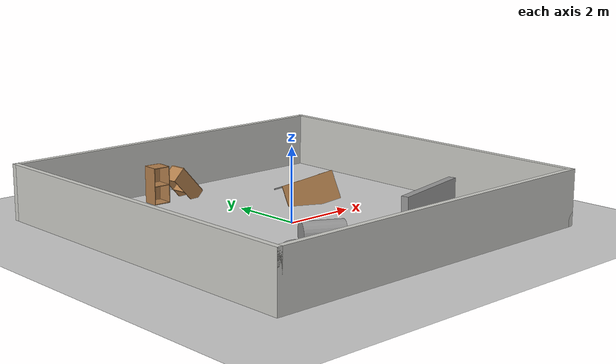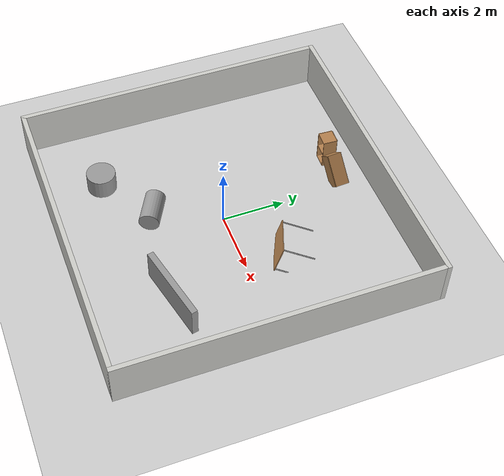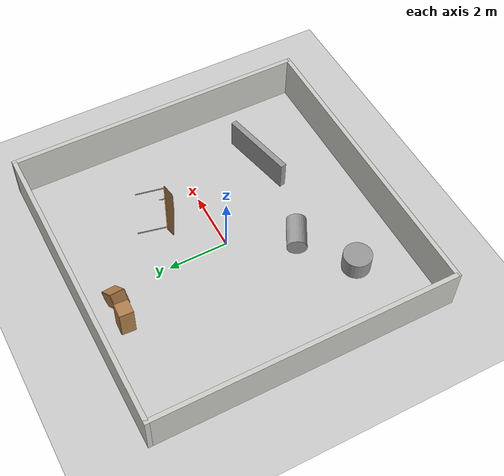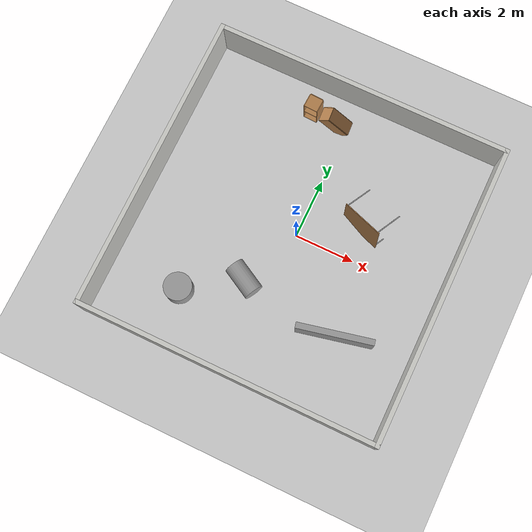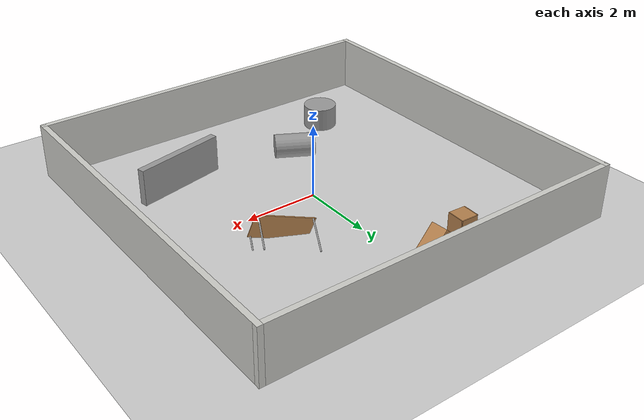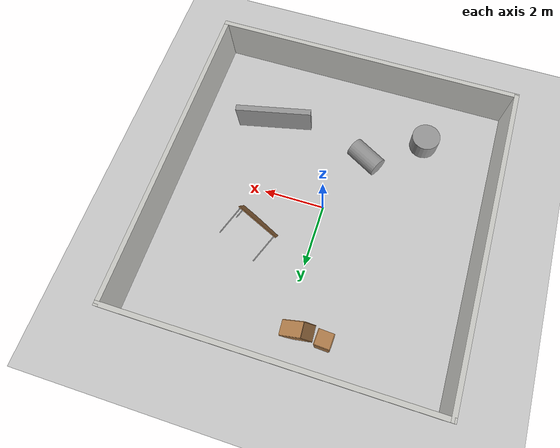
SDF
<sdf version="1.7">
 <world name="default">
  <light name="sun" type="directional">
   <pose>0 0 10 0 -0 0</pose>
   <diffuse>0.8 0.8 0.8 1</diffuse>
   <specular>0.2 0.2 0.2 1</specular>
   <attenuation>
    <range>1000</range>
    <constant>0.9</constant>
    <linear>0.01</linear>
    <quadratic>0.001</quadratic>
   </attenuation>
   <direction>-0.5 0.1 -0.9</direction>
   <spot><inner_angle>0</inner_angle><outer_angle>0</outer_angle><falloff>0</falloff></spot>
  </light>
  <model name="ground_plane">
   <static>1</static>
   <link name="link">
    <collision name="collision">
     <geometry><plane><normal>0 0 1</normal><size>100 100</size></plane></geometry>
     <surface><friction><ode><mu>100</mu><mu2>50</mu2></ode></friction></surface>
    </collision>
    <visual name="visual">
     <cast_shadows>0</cast_shadows>
     <geometry><plane><normal>0 0 1</normal><size>100 100</size></plane></geometry>
     <material>
      <script><uri>file://media/materials/scripts/gazebo.material</uri><name>Gazebo/Grey</name></script>
     </material>
    </visual>
   </link>
  </model>
  <gravity>0 0 -9.8</gravity>
  <magnetic_field>6e-06 2.3e-05 -4.2e-05</magnetic_field>
  <atmosphere type="adiabatic"/>
  <physics type="ode">
   <max_step_size>0.001</max_step_size>
   <real_time_factor>1</real_time_factor>
   <real_time_update_rate>1000</real_time_update_rate>
  </physics>
  <scene><ambient>0.4 0.4 0.4 1</ambient><background>0.7 0.7 0.7 1</background><shadows>1</shadows></scene>
  <audio><device>default</device></audio>
  <spherical_coordinates>
   <surface_model>EARTH_WGS84</surface_model>
   <latitude_deg>0</latitude_deg>
   <longitude_deg>0</longitude_deg>
   <elevation>0</elevation>
   <heading_deg>0</heading_deg>
  </spherical_coordinates>
  <model name="my_first_world">
   <pose>-0.01092 0.003198 0 0 -0 0</pose>
   <link name="Wall_38">
    <collision name="Wall_38_Collision">
     <geometry><box><size>10.15 0.15 1.5</size></box></geometry>
     <pose>0 0 0.75 0 -0 0</pose>
    </collision>
    <visual name="Wall_38_Visual">
     <pose>0 0 0.75 0 -0 0</pose>
     <geometry><box><size>10.15 0.15 1.5</size></box></geometry>
     <material>
      <script><uri>file://media/materials/scripts/gazebo.material</uri><name>Gazebo/CeilingTiled</name></script>
      <ambient>1 1 1 1</ambient>
     </material>
     <meta><layer>0</layer></meta>
    </visual>
    <pose>-5 0 0 0 -0 -1.5708</pose>
   </link>
   <link name="Wall_39">
    <collision name="Wall_39_Collision">
     <geometry><box><size>10.15 0.15 1.5</size></box></geometry>
     <pose>0 0 0.75 0 -0 0</pose>
    </collision>
    <visual name="Wall_39_Visual">
     <pose>0 0 0.75 0 -0 0</pose>
     <geometry><box><size>10.15 0.15 1.5</size></box></geometry>
     <material>
      <script><uri>file://media/materials/scripts/gazebo.material</uri><name>Gazebo/CeilingTiled</name></script>
      <ambient>1 1 1 1</ambient>
     </material>
     <meta><layer>0</layer></meta>
    </visual>
    <pose>0 -5 0 0 -0 0</pose>
   </link>
   <link name="Wall_40">
    <collision name="Wall_40_Collision">
     <geometry><box><size>10.15 0.15 1.5</size></box></geometry>
     <pose>0 0 0.75 0 -0 0</pose>
    </collision>
    <visual name="Wall_40_Visual">
     <pose>0 0 0.75 0 -0 0</pose>
     <geometry><box><size>10.15 0.15 1.5</size></box></geometry>
     <material>
      <script><uri>file://media/materials/scripts/gazebo.material</uri><name>Gazebo/CeilingTiled</name></script>
      <ambient>1 1 1 1</ambient>
     </material>
     <meta><layer>0</layer></meta>
    </visual>
    <pose>5 0 0 0 -0 1.5708</pose>
   </link>
   <link name="Wall_41">
    <collision name="Wall_41_Collision">
     <geometry><box><size>10.15 0.15 1.5</size></box></geometry>
     <pose>0 0 0.75 0 -0 0</pose>
    </collision>
    <visual name="Wall_41_Visual">
     <pose>0 0 0.75 0 -0 0</pose>
     <geometry><box><size>10.15 0.15 1.5</size></box></geometry>
     <material>
      <script><uri>file://media/materials/scripts/gazebo.material</uri><name>Gazebo/CeilingTiled</name></script>
      <ambient>1 1 1 1</ambient>
     </material>
     <meta><layer>0</layer></meta>
    </visual>
    <pose>0 5 0 0 -0 3.14159</pose>
   </link>
   <static>1</static>
  </model>
  <model name="cabinet">
   <static>1</static>
   <link name="cabinet_bottom_plate">
    <inertial>
     <pose>0 0 -1 0 -0 0</pose>
     <inertia><ixx>2.05</ixx><ixy>0</ixy><ixz>0</ixz><iyy>2.05</iyy><iyz>0</iyz><izz>2.05</izz></inertia>
     <mass>25</mass>
    </inertial>
    <collision name="cabinet_bottom_plate_geom">
     <pose>0 0 0.01 0 -0 0</pose>
     <geometry><box><size>0.45 0.45 0.02</size></box></geometry>
    </collision>
    <visual name="cabinet_bottom_plate_geom_visual">
     <pose>0 0 0.01 0 -0 0</pose>
     <geometry><box><size>0.45 0.45 0.02</size></box></geometry>
     <material>
      <script><uri>file://media/materials/scripts/gazebo.material</uri><name>Gazebo/Wood</name></script>
     </material>
    </visual>
    <collision name="cabinet_bottom_plate_geom_cabinet_back_plate">
     <pose>0.235 0 0.51 0 -0 0</pose>
     <geometry><box><size>0.02 0.45 1.02</size></box></geometry>
    </collision>
    <visual name="cabinet_bottom_plate_geom_cabinet_back_plate_visual">
     <pose>0.235 0 0.51 0 -0 0</pose>
     <geometry><box><size>0.02 0.45 1.02</size></box></geometry>
     <material>
      <script><uri>file://media/materials/scripts/gazebo.material</uri><name>Gazebo/Wood</name></script>
     </material>
    </visual>
    <collision name="cabinet_bottom_plate_geom_cabinet_left_plate">
     <pose>0 0.235 0.51 0 -0 0</pose>
     <geometry><box><size>0.45 0.02 1.02</size></box></geometry>
    </collision>
    <visual name="cabinet_bottom_plate_geom_cabinet_left_plate_visual">
     <pose>0 0.235 0.51 0 -0 0</pose>
     <geometry><box><size>0.45 0.02 1.02</size></box></geometry>
     <material>
      <script><uri>file://media/materials/scripts/gazebo.material</uri><name>Gazebo/Wood</name></script>
     </material>
    </visual>
    <collision name="cabinet_bottom_plate_geom_cabinet_middle_plate">
     <pose>0 0 0.51 0 -0 0</pose>
     <geometry><box><size>0.45 0.45 0.02</size></box></geometry>
    </collision>
    <visual name="cabinet_bottom_plate_geom_cabinet_middle_plate_visual">
     <pose>0 0 0.51 0 -0 0</pose>
     <geometry><box><size>0.45 0.45 0.02</size></box></geometry>
     <material>
      <script><uri>file://media/materials/scripts/gazebo.material</uri><name>Gazebo/Wood</name></script>
     </material>
    </visual>
    <collision name="cabinet_bottom_plate_geom_cabinet_right_plate">
     <pose>0 -0.235 0.51 0 -0 0</pose>
     <geometry><box><size>0.45 0.02 1.02</size></box></geometry>
    </collision>
    <visual name="cabinet_bottom_plate_geom_cabinet_right_plate_visual">
     <pose>0 -0.235 0.51 0 -0 0</pose>
     <geometry><box><size>0.45 0.02 1.02</size></box></geometry>
     <material>
      <script><uri>file://media/materials/scripts/gazebo.material</uri><name>Gazebo/Wood</name></script>
     </material>
    </visual>
    <collision name="cabinet_bottom_plate_geom_cabinet_top_plate">
     <pose>0 0 1.01 0 -0 0</pose>
     <geometry><box><size>0.45 0.45 0.02</size></box></geometry>
    </collision>
    <visual name="cabinet_bottom_plate_geom_cabinet_top_plate_visual">
     <pose>0 0 1.01 0 -0 0</pose>
     <geometry><box><size>0.45 0.45 0.02</size></box></geometry>
     <material>
      <script><uri>file://media/materials/scripts/gazebo.material</uri><name>Gazebo/Wood</name></script>
     </material>
    </visual>
   </link>
   <pose>-1.2719 4.02994 0 0 -0 1.52324</pose>
  </model>
  <model name="cabinet_0">
   <static>1</static>
   <link name="cabinet_bottom_plate">
    <inertial>
     <pose>0 0 -1 0 -0 0</pose>
     <inertia><ixx>2.05</ixx><ixy>0</ixy><ixz>0</ixz><iyy>2.05</iyy><iyz>0</iyz><izz>2.05</izz></inertia>
     <mass>25</mass>
    </inertial>
    <collision name="cabinet_bottom_plate_geom">
     <pose>0 0 0.01 0 -0 0</pose>
     <geometry><box><size>0.45 0.45 0.02</size></box></geometry>
    </collision>
    <visual name="cabinet_bottom_plate_geom_visual">
     <pose>0 0 0.01 0 -0 0</pose>
     <geometry><box><size>0.45 0.45 0.02</size></box></geometry>
     <material>
      <script><uri>file://media/materials/scripts/gazebo.material</uri><name>Gazebo/Wood</name></script>
     </material>
    </visual>
    <collision name="cabinet_bottom_plate_geom_cabinet_back_plate">
     <pose>0.235 0 0.51 0 -0 0</pose>
     <geometry><box><size>0.02 0.45 1.02</size></box></geometry>
    </collision>
    <visual name="cabinet_bottom_plate_geom_cabinet_back_plate_visual">
     <pose>0.235 0 0.51 0 -0 0</pose>
     <geometry><box><size>0.02 0.45 1.02</size></box></geometry>
     <material>
      <script><uri>file://media/materials/scripts/gazebo.material</uri><name>Gazebo/Wood</name></script>
     </material>
    </visual>
    <collision name="cabinet_bottom_plate_geom_cabinet_left_plate">
     <pose>0 0.235 0.51 0 -0 0</pose>
     <geometry><box><size>0.45 0.02 1.02</size></box></geometry>
    </collision>
    <visual name="cabinet_bottom_plate_geom_cabinet_left_plate_visual">
     <pose>0 0.235 0.51 0 -0 0</pose>
     <geometry><box><size>0.45 0.02 1.02</size></box></geometry>
     <material>
      <script><uri>file://media/materials/scripts/gazebo.material</uri><name>Gazebo/Wood</name></script>
     </material>
    </visual>
    <collision name="cabinet_bottom_plate_geom_cabinet_middle_plate">
     <pose>0 0 0.51 0 -0 0</pose>
     <geometry><box><size>0.45 0.45 0.02</size></box></geometry>
    </collision>
    <visual name="cabinet_bottom_plate_geom_cabinet_middle_plate_visual">
     <pose>0 0 0.51 0 -0 0</pose>
     <geometry><box><size>0.45 0.45 0.02</size></box></geometry>
     <material>
      <script><uri>file://media/materials/scripts/gazebo.material</uri><name>Gazebo/Wood</name></script>
     </material>
    </visual>
    <collision name="cabinet_bottom_plate_geom_cabinet_right_plate">
     <pose>0 -0.235 0.51 0 -0 0</pose>
     <geometry><box><size>0.45 0.02 1.02</size></box></geometry>
    </collision>
    <visual name="cabinet_bottom_plate_geom_cabinet_right_plate_visual">
     <pose>0 -0.235 0.51 0 -0 0</pose>
     <geometry><box><size>0.45 0.02 1.02</size></box></geometry>
     <material>
      <script><uri>file://media/materials/scripts/gazebo.material</uri><name>Gazebo/Wood</name></script>
     </material>
    </visual>
    <collision name="cabinet_bottom_plate_geom_cabinet_top_plate">
     <pose>0 0 1.01 0 -0 0</pose>
     <geometry><box><size>0.45 0.45 0.02</size></box></geometry>
    </collision>
    <visual name="cabinet_bottom_plate_geom_cabinet_top_plate_visual">
     <pose>0 0 1.01 0 -0 0</pose>
     <geometry><box><size>0.45 0.45 0.02</size></box></geometry>
     <material>
      <script><uri>file://media/materials/scripts/gazebo.material</uri><name>Gazebo/Wood</name></script>
     </material>
    </visual>
   </link>
   <pose>-0.088118 4.00358 0 -0 -0.750334 0.068128</pose>
  </model>
  <model name="unit_cylinder">
   <pose>-2.60883 -3.18229 0.321316 -7e-06 -3e-06 1.9318</pose>
   <link name="link">
    <inertial>
     <mass>1</mass>
     <inertia><ixx>0.145833</ixx><ixy>0</ixy><ixz>0</ixz><iyy>0.145833</iyy><iyz>0</iyz><izz>0.125</izz></inertia>
    </inertial>
    <collision name="collision">
     <geometry><cylinder><radius>0.462146</radius><length>0.642638</length></cylinder></geometry>
    </collision>
    <visual name="visual">
     <geometry><cylinder><radius>0.462146</radius><length>0.642638</length></cylinder></geometry>
     <material>
      <script><name>Gazebo/Grey</name><uri>file://media/materials/scripts/gazebo.material</uri></script>
     </material>
    </visual>
   </link>
  </model>
  <model name="table">
   <static>1</static>
   <link name="link">
    <collision name="surface">
     <pose>0 0 1 0 -0 0</pose>
     <geometry><box><size>1.5 0.8 0.03</size></box></geometry>
     <surface><friction><ode><mu>0.6</mu><mu2>0.6</mu2></ode></friction></surface>
    </collision>
    <visual name="visual1">
     <pose>0 0 1 0 -0 0</pose>
     <geometry><box><size>1.5 0.8 0.03</size></box></geometry>
     <material>
      <script><uri>file://media/materials/scripts/gazebo.material</uri><name>Gazebo/Wood</name></script>
     </material>
    </visual>
    <collision name="front_left_leg">
     <pose>0.68 0.38 0.5 0 -0 0</pose>
     <geometry><cylinder><radius>0.02</radius><length>1</length></cylinder></geometry>
    </collision>
    <visual name="front_left_leg">
     <pose>0.68 0.38 0.5 0 -0 0</pose>
     <geometry><cylinder><radius>0.02</radius><length>1</length></cylinder></geometry>
     <material>
      <script><uri>file://media/materials/scripts/gazebo.material</uri><name>Gazebo/Grey</name></script>
     </material>
    </visual>
    <collision name="front_right_leg">
     <pose>0.68 -0.38 0.5 0 -0 0</pose>
     <geometry><cylinder><radius>0.02</radius><length>1</length></cylinder></geometry>
    </collision>
    <visual name="front_right_leg">
     <pose>0.68 -0.38 0.5 0 -0 0</pose>
     <geometry><cylinder><radius>0.02</radius><length>1</length></cylinder></geometry>
     <material>
      <script><uri>file://media/materials/scripts/gazebo.material</uri><name>Gazebo/Grey</name></script>
     </material>
    </visual>
    <collision name="back_right_leg">
     <pose>-0.68 -0.38 0.5 0 -0 0</pose>
     <geometry><cylinder><radius>0.02</radius><length>1</length></cylinder></geometry>
    </collision>
    <visual name="back_right_leg">
     <pose>-0.68 -0.38 0.5 0 -0 0</pose>
     <geometry><cylinder><radius>0.02</radius><length>1</length></cylinder></geometry>
     <material>
      <script><uri>file://media/materials/scripts/gazebo.material</uri><name>Gazebo/Grey</name></script>
     </material>
    </visual>
    <collision name="back_left_leg">
     <pose>-0.68 0.38 0.5 0 -0 0</pose>
     <geometry><cylinder><radius>0.02</radius><length>1</length></cylinder></geometry>
    </collision>
    <visual name="back_left_leg">
     <pose>-0.68 0.38 0.5 0 -0 0</pose>
     <geometry><cylinder><radius>0.02</radius><length>1</length></cylinder></geometry>
     <material>
      <script><uri>file://media/materials/scripts/gazebo.material</uri><name>Gazebo/Grey</name></script>
     </material>
    </visual>
   </link>
   <pose>2.18402 1.98599 0 1.25043 -0.222238 -0.373482</pose>
  </model>
  <model name="grey_wall">
   <link name="link">
    <pose>1.80096 -0.416872 0.5 0 -0 0.218399</pose>
    <inertial>
     <mass>1</mass>
     <inertia><ixx>1</ixx><ixy>0</ixy><ixz>0</ixz><iyy>1</iyy><iyz>0</iyz><izz>1</izz></inertia>
    </inertial>
    <visual name="visual">
     <cast_shadows>0</cast_shadows>
     <geometry><box><size>2.5 0.2 1</size></box></geometry>
     <material>
      <script>
       <uri>model://grey_wall/materials/scripts</uri>
       <uri>model://grey_wall/materials/textures</uri>
       <name>vrc/grey_wall</name>
      </script>
      <shader type="pixel"><normal_map>__default__</normal_map></shader>
      <ambient>1 1 1 1</ambient>
      <diffuse>1 1 1 1</diffuse>
      <specular>0 0 0 1</specular>
      <emissive>0 0 0 1</emissive>
     </material>
    </visual>
    <collision name="collision">
     <geometry><box><size>2.5 0.2 1</size></box></geometry>
     <surface>
      <friction>
       <ode><mu>1</mu><mu2>1</mu2><fdir1>0 0 0</fdir1><slip1>0</slip1><slip2>0</slip2></ode>
       <torsional>
        <coefficient>1</coefficient>
        <patch_radius>0</patch_radius>
        <surface_radius>0</surface_radius>
        <use_patch_radius>1</use_patch_radius>
        <ode><slip>0</slip></ode>
       </torsional>
      </friction>
      <bounce><restitution_coefficient>0</restitution_coefficient><threshold>1e+06</threshold></bounce>
      <contact>
       <collide_without_contact>0</collide_without_contact>
       <collide_without_contact_bitmask>1</collide_without_contact_bitmask>
       <collide_bitmask>1</collide_bitmask>
       <ode>
        <soft_cfm>0</soft_cfm>
        <soft_erp>0.2</soft_erp>
        <kp>1e+13</kp>
        <kd>1</kd>
        <max_vel>0.01</max_vel>
        <min_depth>0</min_depth>
       </ode>
       <bullet>
        <split_impulse>1</split_impulse>
        <split_impulse_penetration_threshold>-0.01</split_impulse_penetration_threshold>
        <soft_cfm>0</soft_cfm>
        <soft_erp>0.2</soft_erp>
        <kp>1e+13</kp>
        <kd>1</kd>
       </bullet>
      </contact>
     </surface>
    </collision>
   </link>
   <static>1</static>
   <pose>0.68419 -2.05629 0 0 -0 0</pose>
  </model>
  <model name="unit_cylinder_0">
   <pose>-0.867271 -2.03847 0.326219 -1.5708 0.097343 1.07312</pose>
   <link name="link">
    <inertial>
     <mass>1</mass>
     <inertia><ixx>0.145833</ixx><ixy>0</ixy><ixz>0</ixz><iyy>0.145833</iyy><iyz>0</iyz><izz>0.125</izz></inertia>
    </inertial>
    <collision name="collision">
     <geometry><cylinder><radius>0.326219</radius><length>1.09</length></cylinder></geometry>
    </collision>
    <visual name="visual">
     <geometry><cylinder><radius>0.326219</radius><length>1.09</length></cylinder></geometry>
     <material>
      <script><name>Gazebo/Grey</name><uri>file://media/materials/scripts/gazebo.material</uri></script>
     </material>
    </visual>
   </link>
  </model>
 </world>
</sdf>
